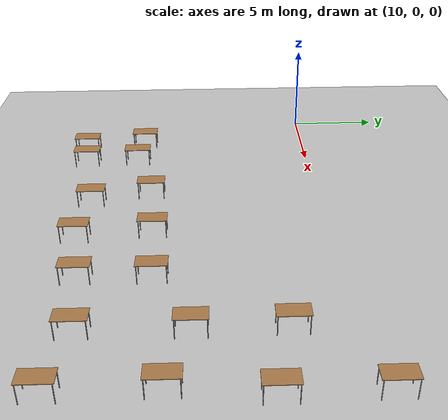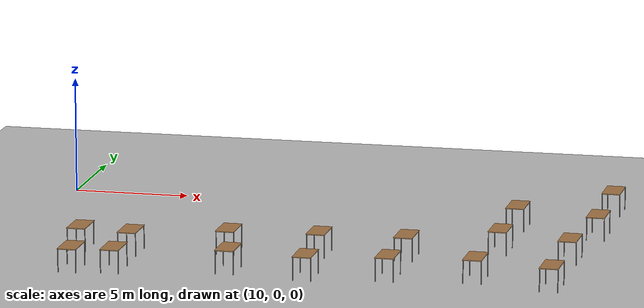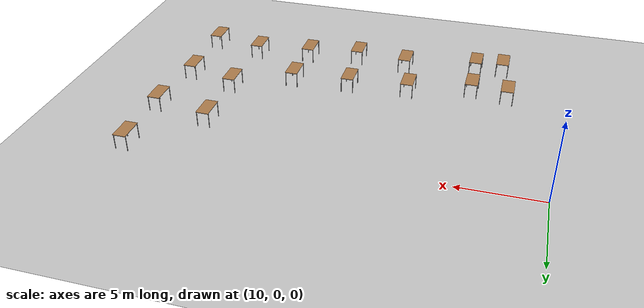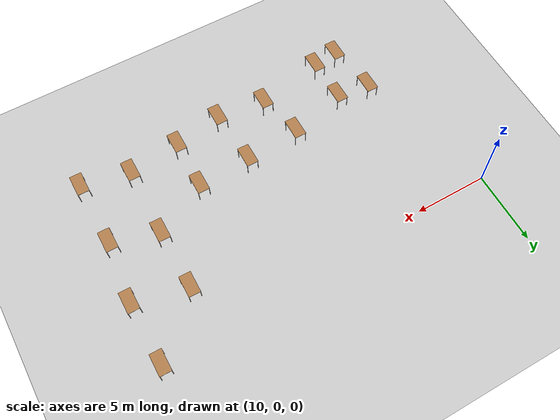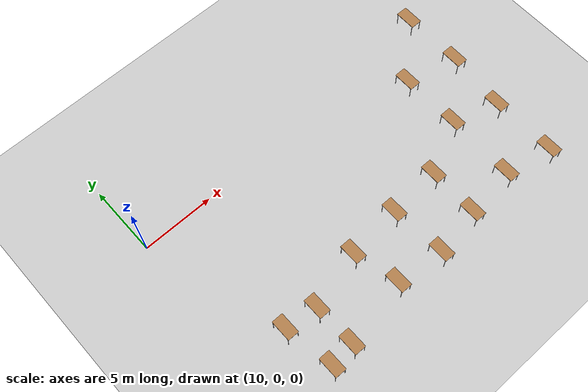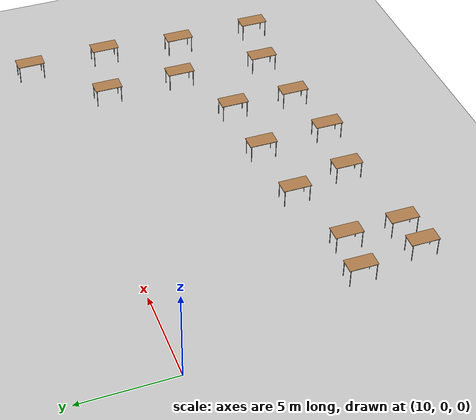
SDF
<sdf version="1.6">
 <world name="default">
  <model name="ground_plane">
   <static>1</static>
   <link name="link">
    <collision name="collision">
     <geometry><plane><normal>0 0 1</normal><size>100 100</size></plane></geometry>
     <surface>
      <contact><collide_bitmask>65535</collide_bitmask></contact>
      <friction><ode><mu>100</mu><mu2>50</mu2></ode></friction>
     </surface>
    </collision>
    <visual name="visual">
     <cast_shadows>0</cast_shadows>
     <geometry><plane><normal>0 0 1</normal><size>100 100</size></plane></geometry>
     <material>
      <script><uri>file://media/materials/scripts/gazebo.material</uri><name>Gazebo/Grey</name></script>
     </material>
    </visual>
   </link>
  </model>
  <model name="table_clone_1">
   <static>1</static>
   <link name="link">
    <collision name="surface">
     <pose>0 0 1 0 -0 0</pose>
     <geometry><box><size>1.5 0.8 0.03</size></box></geometry>
     <surface><friction><ode><mu>0.6</mu><mu2>0.6</mu2></ode></friction></surface>
    </collision>
    <visual name="visual1">
     <pose>0 0 1 0 -0 0</pose>
     <geometry><box><size>1.5 0.8 0.03</size></box></geometry>
     <material>
      <script><uri>file://media/materials/scripts/gazebo.material</uri><name>Gazebo/Wood</name></script>
     </material>
    </visual>
    <collision name="front_left_leg">
     <pose>0.68 0.38 0.5 0 -0 0</pose>
     <geometry><cylinder><radius>0.02</radius><length>1</length></cylinder></geometry>
    </collision>
    <visual name="front_left_leg">
     <pose>0.68 0.38 0.5 0 -0 0</pose>
     <geometry><cylinder><radius>0.02</radius><length>1</length></cylinder></geometry>
     <material>
      <script><uri>file://media/materials/scripts/gazebo.material</uri><name>Gazebo/Grey</name></script>
     </material>
    </visual>
    <collision name="front_right_leg">
     <pose>0.68 -0.38 0.5 0 -0 0</pose>
     <geometry><cylinder><radius>0.02</radius><length>1</length></cylinder></geometry>
    </collision>
    <visual name="front_right_leg">
     <pose>0.68 -0.38 0.5 0 -0 0</pose>
     <geometry><cylinder><radius>0.02</radius><length>1</length></cylinder></geometry>
     <material>
      <script><uri>file://media/materials/scripts/gazebo.material</uri><name>Gazebo/Grey</name></script>
     </material>
    </visual>
    <collision name="back_right_leg">
     <pose>-0.68 -0.38 0.5 0 -0 0</pose>
     <geometry><cylinder><radius>0.02</radius><length>1</length></cylinder></geometry>
    </collision>
    <visual name="back_right_leg">
     <pose>-0.68 -0.38 0.5 0 -0 0</pose>
     <geometry><cylinder><radius>0.02</radius><length>1</length></cylinder></geometry>
     <material>
      <script><uri>file://media/materials/scripts/gazebo.material</uri><name>Gazebo/Grey</name></script>
     </material>
    </visual>
    <collision name="back_left_leg">
     <pose>-0.68 0.38 0.5 0 -0 0</pose>
     <geometry><cylinder><radius>0.02</radius><length>1</length></cylinder></geometry>
    </collision>
    <visual name="back_left_leg">
     <pose>-0.68 0.38 0.5 0 -0 0</pose>
     <geometry><cylinder><radius>0.02</radius><length>1</length></cylinder></geometry>
     <material>
      <script><uri>file://media/materials/scripts/gazebo.material</uri><name>Gazebo/Grey</name></script>
     </material>
    </visual>
   </link>
   <pose>12.8871 -9.82897 0 0 0 -1.57678</pose>
  </model>
  <model name="table_clone_4">
   <static>1</static>
   <link name="link">
    <collision name="surface">
     <pose>0 0 1 0 -0 0</pose>
     <geometry><box><size>1.5 0.8 0.03</size></box></geometry>
     <surface><friction><ode><mu>0.6</mu><mu2>0.6</mu2></ode></friction></surface>
    </collision>
    <visual name="visual1">
     <pose>0 0 1 0 -0 0</pose>
     <geometry><box><size>1.5 0.8 0.03</size></box></geometry>
     <material>
      <script><uri>file://media/materials/scripts/gazebo.material</uri><name>Gazebo/Wood</name></script>
     </material>
    </visual>
    <collision name="front_left_leg">
     <pose>0.68 0.38 0.5 0 -0 0</pose>
     <geometry><cylinder><radius>0.02</radius><length>1</length></cylinder></geometry>
    </collision>
    <visual name="front_left_leg">
     <pose>0.68 0.38 0.5 0 -0 0</pose>
     <geometry><cylinder><radius>0.02</radius><length>1</length></cylinder></geometry>
     <material>
      <script><uri>file://media/materials/scripts/gazebo.material</uri><name>Gazebo/Grey</name></script>
     </material>
    </visual>
    <collision name="front_right_leg">
     <pose>0.68 -0.38 0.5 0 -0 0</pose>
     <geometry><cylinder><radius>0.02</radius><length>1</length></cylinder></geometry>
    </collision>
    <visual name="front_right_leg">
     <pose>0.68 -0.38 0.5 0 -0 0</pose>
     <geometry><cylinder><radius>0.02</radius><length>1</length></cylinder></geometry>
     <material>
      <script><uri>file://media/materials/scripts/gazebo.material</uri><name>Gazebo/Grey</name></script>
     </material>
    </visual>
    <collision name="back_right_leg">
     <pose>-0.68 -0.38 0.5 0 -0 0</pose>
     <geometry><cylinder><radius>0.02</radius><length>1</length></cylinder></geometry>
    </collision>
    <visual name="back_right_leg">
     <pose>-0.68 -0.38 0.5 0 -0 0</pose>
     <geometry><cylinder><radius>0.02</radius><length>1</length></cylinder></geometry>
     <material>
      <script><uri>file://media/materials/scripts/gazebo.material</uri><name>Gazebo/Grey</name></script>
     </material>
    </visual>
    <collision name="back_left_leg">
     <pose>-0.68 0.38 0.5 0 -0 0</pose>
     <geometry><cylinder><radius>0.02</radius><length>1</length></cylinder></geometry>
    </collision>
    <visual name="back_left_leg">
     <pose>-0.68 0.38 0.5 0 -0 0</pose>
     <geometry><cylinder><radius>0.02</radius><length>1</length></cylinder></geometry>
     <material>
      <script><uri>file://media/materials/scripts/gazebo.material</uri><name>Gazebo/Grey</name></script>
     </material>
    </visual>
   </link>
   <pose>13.4499 -13.3204 0 0 0 -1.57678</pose>
  </model>
  <model name="table_clone_6">
   <static>1</static>
   <link name="link">
    <collision name="surface">
     <pose>0 0 1 0 -0 0</pose>
     <geometry><box><size>1.5 0.8 0.03</size></box></geometry>
     <surface><friction><ode><mu>0.6</mu><mu2>0.6</mu2></ode></friction></surface>
    </collision>
    <visual name="visual1">
     <pose>0 0 1 0 -0 0</pose>
     <geometry><box><size>1.5 0.8 0.03</size></box></geometry>
     <material>
      <script><uri>file://media/materials/scripts/gazebo.material</uri><name>Gazebo/Wood</name></script>
     </material>
    </visual>
    <collision name="front_left_leg">
     <pose>0.68 0.38 0.5 0 -0 0</pose>
     <geometry><cylinder><radius>0.02</radius><length>1</length></cylinder></geometry>
    </collision>
    <visual name="front_left_leg">
     <pose>0.68 0.38 0.5 0 -0 0</pose>
     <geometry><cylinder><radius>0.02</radius><length>1</length></cylinder></geometry>
     <material>
      <script><uri>file://media/materials/scripts/gazebo.material</uri><name>Gazebo/Grey</name></script>
     </material>
    </visual>
    <collision name="front_right_leg">
     <pose>0.68 -0.38 0.5 0 -0 0</pose>
     <geometry><cylinder><radius>0.02</radius><length>1</length></cylinder></geometry>
    </collision>
    <visual name="front_right_leg">
     <pose>0.68 -0.38 0.5 0 -0 0</pose>
     <geometry><cylinder><radius>0.02</radius><length>1</length></cylinder></geometry>
     <material>
      <script><uri>file://media/materials/scripts/gazebo.material</uri><name>Gazebo/Grey</name></script>
     </material>
    </visual>
    <collision name="back_right_leg">
     <pose>-0.68 -0.38 0.5 0 -0 0</pose>
     <geometry><cylinder><radius>0.02</radius><length>1</length></cylinder></geometry>
    </collision>
    <visual name="back_right_leg">
     <pose>-0.68 -0.38 0.5 0 -0 0</pose>
     <geometry><cylinder><radius>0.02</radius><length>1</length></cylinder></geometry>
     <material>
      <script><uri>file://media/materials/scripts/gazebo.material</uri><name>Gazebo/Grey</name></script>
     </material>
    </visual>
    <collision name="back_left_leg">
     <pose>-0.68 0.38 0.5 0 -0 0</pose>
     <geometry><cylinder><radius>0.02</radius><length>1</length></cylinder></geometry>
    </collision>
    <visual name="back_left_leg">
     <pose>-0.68 0.38 0.5 0 -0 0</pose>
     <geometry><cylinder><radius>0.02</radius><length>1</length></cylinder></geometry>
     <material>
      <script><uri>file://media/materials/scripts/gazebo.material</uri><name>Gazebo/Grey</name></script>
     </material>
    </visual>
   </link>
   <pose>15.1994 -13.1014 0 0 0 -1.57678</pose>
  </model>
  <model name="table_clone_7">
   <static>1</static>
   <link name="link">
    <collision name="surface">
     <pose>0 0 1 0 -0 0</pose>
     <geometry><box><size>1.5 0.8 0.03</size></box></geometry>
     <surface><friction><ode><mu>0.6</mu><mu2>0.6</mu2></ode></friction></surface>
    </collision>
    <visual name="visual1">
     <pose>0 0 1 0 -0 0</pose>
     <geometry><box><size>1.5 0.8 0.03</size></box></geometry>
     <material>
      <script><uri>file://media/materials/scripts/gazebo.material</uri><name>Gazebo/Wood</name></script>
     </material>
    </visual>
    <collision name="front_left_leg">
     <pose>0.68 0.38 0.5 0 -0 0</pose>
     <geometry><cylinder><radius>0.02</radius><length>1</length></cylinder></geometry>
    </collision>
    <visual name="front_left_leg">
     <pose>0.68 0.38 0.5 0 -0 0</pose>
     <geometry><cylinder><radius>0.02</radius><length>1</length></cylinder></geometry>
     <material>
      <script><uri>file://media/materials/scripts/gazebo.material</uri><name>Gazebo/Grey</name></script>
     </material>
    </visual>
    <collision name="front_right_leg">
     <pose>0.68 -0.38 0.5 0 -0 0</pose>
     <geometry><cylinder><radius>0.02</radius><length>1</length></cylinder></geometry>
    </collision>
    <visual name="front_right_leg">
     <pose>0.68 -0.38 0.5 0 -0 0</pose>
     <geometry><cylinder><radius>0.02</radius><length>1</length></cylinder></geometry>
     <material>
      <script><uri>file://media/materials/scripts/gazebo.material</uri><name>Gazebo/Grey</name></script>
     </material>
    </visual>
    <collision name="back_right_leg">
     <pose>-0.68 -0.38 0.5 0 -0 0</pose>
     <geometry><cylinder><radius>0.02</radius><length>1</length></cylinder></geometry>
    </collision>
    <visual name="back_right_leg">
     <pose>-0.68 -0.38 0.5 0 -0 0</pose>
     <geometry><cylinder><radius>0.02</radius><length>1</length></cylinder></geometry>
     <material>
      <script><uri>file://media/materials/scripts/gazebo.material</uri><name>Gazebo/Grey</name></script>
     </material>
    </visual>
    <collision name="back_left_leg">
     <pose>-0.68 0.38 0.5 0 -0 0</pose>
     <geometry><cylinder><radius>0.02</radius><length>1</length></cylinder></geometry>
    </collision>
    <visual name="back_left_leg">
     <pose>-0.68 0.38 0.5 0 -0 0</pose>
     <geometry><cylinder><radius>0.02</radius><length>1</length></cylinder></geometry>
     <material>
      <script><uri>file://media/materials/scripts/gazebo.material</uri><name>Gazebo/Grey</name></script>
     </material>
    </visual>
   </link>
   <pose>15.1439 -10.1159 0 0 0 -1.57678</pose>
  </model>
  <model name="table_clone_7_clone_3">
   <static>1</static>
   <link name="link">
    <collision name="surface">
     <pose>0 0 1 0 -0 0</pose>
     <geometry><box><size>1.5 0.8 0.03</size></box></geometry>
     <surface><friction><ode><mu>0.6</mu><mu2>0.6</mu2></ode></friction></surface>
    </collision>
    <visual name="visual1">
     <pose>0 0 1 0 -0 0</pose>
     <geometry><box><size>1.5 0.8 0.03</size></box></geometry>
     <material>
      <script><uri>file://media/materials/scripts/gazebo.material</uri><name>Gazebo/Wood</name></script>
     </material>
    </visual>
    <collision name="front_left_leg">
     <pose>0.68 0.38 0.5 0 -0 0</pose>
     <geometry><cylinder><radius>0.02</radius><length>1</length></cylinder></geometry>
    </collision>
    <visual name="front_left_leg">
     <pose>0.68 0.38 0.5 0 -0 0</pose>
     <geometry><cylinder><radius>0.02</radius><length>1</length></cylinder></geometry>
     <material>
      <script><uri>file://media/materials/scripts/gazebo.material</uri><name>Gazebo/Grey</name></script>
     </material>
    </visual>
    <collision name="front_right_leg">
     <pose>0.68 -0.38 0.5 0 -0 0</pose>
     <geometry><cylinder><radius>0.02</radius><length>1</length></cylinder></geometry>
    </collision>
    <visual name="front_right_leg">
     <pose>0.68 -0.38 0.5 0 -0 0</pose>
     <geometry><cylinder><radius>0.02</radius><length>1</length></cylinder></geometry>
     <material>
      <script><uri>file://media/materials/scripts/gazebo.material</uri><name>Gazebo/Grey</name></script>
     </material>
    </visual>
    <collision name="back_right_leg">
     <pose>-0.68 -0.38 0.5 0 -0 0</pose>
     <geometry><cylinder><radius>0.02</radius><length>1</length></cylinder></geometry>
    </collision>
    <visual name="back_right_leg">
     <pose>-0.68 -0.38 0.5 0 -0 0</pose>
     <geometry><cylinder><radius>0.02</radius><length>1</length></cylinder></geometry>
     <material>
      <script><uri>file://media/materials/scripts/gazebo.material</uri><name>Gazebo/Grey</name></script>
     </material>
    </visual>
    <collision name="back_left_leg">
     <pose>-0.68 0.38 0.5 0 -0 0</pose>
     <geometry><cylinder><radius>0.02</radius><length>1</length></cylinder></geometry>
    </collision>
    <visual name="back_left_leg">
     <pose>-0.68 0.38 0.5 0 -0 0</pose>
     <geometry><cylinder><radius>0.02</radius><length>1</length></cylinder></geometry>
     <material>
      <script><uri>file://media/materials/scripts/gazebo.material</uri><name>Gazebo/Grey</name></script>
     </material>
    </visual>
   </link>
   <pose>33.7056 0.969584 0 0 0 -1.57678</pose>
  </model>
  <model name="table_clone_7_clone_4">
   <static>1</static>
   <link name="link">
    <collision name="surface">
     <pose>0 0 1 0 -0 0</pose>
     <geometry><box><size>1.5 0.8 0.03</size></box></geometry>
     <surface><friction><ode><mu>0.6</mu><mu2>0.6</mu2></ode></friction></surface>
    </collision>
    <visual name="visual1">
     <pose>0 0 1 0 -0 0</pose>
     <geometry><box><size>1.5 0.8 0.03</size></box></geometry>
     <material>
      <script><uri>file://media/materials/scripts/gazebo.material</uri><name>Gazebo/Wood</name></script>
     </material>
    </visual>
    <collision name="front_left_leg">
     <pose>0.68 0.38 0.5 0 -0 0</pose>
     <geometry><cylinder><radius>0.02</radius><length>1</length></cylinder></geometry>
    </collision>
    <visual name="front_left_leg">
     <pose>0.68 0.38 0.5 0 -0 0</pose>
     <geometry><cylinder><radius>0.02</radius><length>1</length></cylinder></geometry>
     <material>
      <script><uri>file://media/materials/scripts/gazebo.material</uri><name>Gazebo/Grey</name></script>
     </material>
    </visual>
    <collision name="front_right_leg">
     <pose>0.68 -0.38 0.5 0 -0 0</pose>
     <geometry><cylinder><radius>0.02</radius><length>1</length></cylinder></geometry>
    </collision>
    <visual name="front_right_leg">
     <pose>0.68 -0.38 0.5 0 -0 0</pose>
     <geometry><cylinder><radius>0.02</radius><length>1</length></cylinder></geometry>
     <material>
      <script><uri>file://media/materials/scripts/gazebo.material</uri><name>Gazebo/Grey</name></script>
     </material>
    </visual>
    <collision name="back_right_leg">
     <pose>-0.68 -0.38 0.5 0 -0 0</pose>
     <geometry><cylinder><radius>0.02</radius><length>1</length></cylinder></geometry>
    </collision>
    <visual name="back_right_leg">
     <pose>-0.68 -0.38 0.5 0 -0 0</pose>
     <geometry><cylinder><radius>0.02</radius><length>1</length></cylinder></geometry>
     <material>
      <script><uri>file://media/materials/scripts/gazebo.material</uri><name>Gazebo/Grey</name></script>
     </material>
    </visual>
    <collision name="back_left_leg">
     <pose>-0.68 0.38 0.5 0 -0 0</pose>
     <geometry><cylinder><radius>0.02</radius><length>1</length></cylinder></geometry>
    </collision>
    <visual name="back_left_leg">
     <pose>-0.68 0.38 0.5 0 -0 0</pose>
     <geometry><cylinder><radius>0.02</radius><length>1</length></cylinder></geometry>
     <material>
      <script><uri>file://media/materials/scripts/gazebo.material</uri><name>Gazebo/Grey</name></script>
     </material>
    </visual>
   </link>
   <pose>33.7699 -3.36268 0 0 0 -1.57678</pose>
  </model>
  <model name="table_clone_7_clone_5">
   <static>1</static>
   <link name="link">
    <collision name="surface">
     <pose>0 0 1 0 -0 0</pose>
     <geometry><box><size>1.5 0.8 0.03</size></box></geometry>
     <surface><friction><ode><mu>0.6</mu><mu2>0.6</mu2></ode></friction></surface>
    </collision>
    <visual name="visual1">
     <pose>0 0 1 0 -0 0</pose>
     <geometry><box><size>1.5 0.8 0.03</size></box></geometry>
     <material>
      <script><uri>file://media/materials/scripts/gazebo.material</uri><name>Gazebo/Wood</name></script>
     </material>
    </visual>
    <collision name="front_left_leg">
     <pose>0.68 0.38 0.5 0 -0 0</pose>
     <geometry><cylinder><radius>0.02</radius><length>1</length></cylinder></geometry>
    </collision>
    <visual name="front_left_leg">
     <pose>0.68 0.38 0.5 0 -0 0</pose>
     <geometry><cylinder><radius>0.02</radius><length>1</length></cylinder></geometry>
     <material>
      <script><uri>file://media/materials/scripts/gazebo.material</uri><name>Gazebo/Grey</name></script>
     </material>
    </visual>
    <collision name="front_right_leg">
     <pose>0.68 -0.38 0.5 0 -0 0</pose>
     <geometry><cylinder><radius>0.02</radius><length>1</length></cylinder></geometry>
    </collision>
    <visual name="front_right_leg">
     <pose>0.68 -0.38 0.5 0 -0 0</pose>
     <geometry><cylinder><radius>0.02</radius><length>1</length></cylinder></geometry>
     <material>
      <script><uri>file://media/materials/scripts/gazebo.material</uri><name>Gazebo/Grey</name></script>
     </material>
    </visual>
    <collision name="back_right_leg">
     <pose>-0.68 -0.38 0.5 0 -0 0</pose>
     <geometry><cylinder><radius>0.02</radius><length>1</length></cylinder></geometry>
    </collision>
    <visual name="back_right_leg">
     <pose>-0.68 -0.38 0.5 0 -0 0</pose>
     <geometry><cylinder><radius>0.02</radius><length>1</length></cylinder></geometry>
     <material>
      <script><uri>file://media/materials/scripts/gazebo.material</uri><name>Gazebo/Grey</name></script>
     </material>
    </visual>
    <collision name="back_left_leg">
     <pose>-0.68 0.38 0.5 0 -0 0</pose>
     <geometry><cylinder><radius>0.02</radius><length>1</length></cylinder></geometry>
    </collision>
    <visual name="back_left_leg">
     <pose>-0.68 0.38 0.5 0 -0 0</pose>
     <geometry><cylinder><radius>0.02</radius><length>1</length></cylinder></geometry>
     <material>
      <script><uri>file://media/materials/scripts/gazebo.material</uri><name>Gazebo/Grey</name></script>
     </material>
    </visual>
   </link>
   <pose>33.3213 -7.66936 0 0 0 -1.57678</pose>
  </model>
  <model name="table_clone_7_clone_6">
   <static>1</static>
   <link name="link">
    <collision name="surface">
     <pose>0 0 1 0 -0 0</pose>
     <geometry><box><size>1.5 0.8 0.03</size></box></geometry>
     <surface><friction><ode><mu>0.6</mu><mu2>0.6</mu2></ode></friction></surface>
    </collision>
    <visual name="visual1">
     <pose>0 0 1 0 -0 0</pose>
     <geometry><box><size>1.5 0.8 0.03</size></box></geometry>
     <material>
      <script><uri>file://media/materials/scripts/gazebo.material</uri><name>Gazebo/Wood</name></script>
     </material>
    </visual>
    <collision name="front_left_leg">
     <pose>0.68 0.38 0.5 0 -0 0</pose>
     <geometry><cylinder><radius>0.02</radius><length>1</length></cylinder></geometry>
    </collision>
    <visual name="front_left_leg">
     <pose>0.68 0.38 0.5 0 -0 0</pose>
     <geometry><cylinder><radius>0.02</radius><length>1</length></cylinder></geometry>
     <material>
      <script><uri>file://media/materials/scripts/gazebo.material</uri><name>Gazebo/Grey</name></script>
     </material>
    </visual>
    <collision name="front_right_leg">
     <pose>0.68 -0.38 0.5 0 -0 0</pose>
     <geometry><cylinder><radius>0.02</radius><length>1</length></cylinder></geometry>
    </collision>
    <visual name="front_right_leg">
     <pose>0.68 -0.38 0.5 0 -0 0</pose>
     <geometry><cylinder><radius>0.02</radius><length>1</length></cylinder></geometry>
     <material>
      <script><uri>file://media/materials/scripts/gazebo.material</uri><name>Gazebo/Grey</name></script>
     </material>
    </visual>
    <collision name="back_right_leg">
     <pose>-0.68 -0.38 0.5 0 -0 0</pose>
     <geometry><cylinder><radius>0.02</radius><length>1</length></cylinder></geometry>
    </collision>
    <visual name="back_right_leg">
     <pose>-0.68 -0.38 0.5 0 -0 0</pose>
     <geometry><cylinder><radius>0.02</radius><length>1</length></cylinder></geometry>
     <material>
      <script><uri>file://media/materials/scripts/gazebo.material</uri><name>Gazebo/Grey</name></script>
     </material>
    </visual>
    <collision name="back_left_leg">
     <pose>-0.68 0.38 0.5 0 -0 0</pose>
     <geometry><cylinder><radius>0.02</radius><length>1</length></cylinder></geometry>
    </collision>
    <visual name="back_left_leg">
     <pose>-0.68 0.38 0.5 0 -0 0</pose>
     <geometry><cylinder><radius>0.02</radius><length>1</length></cylinder></geometry>
     <material>
      <script><uri>file://media/materials/scripts/gazebo.material</uri><name>Gazebo/Grey</name></script>
     </material>
    </visual>
   </link>
   <pose>33.3689 -12.2322 0 0 0 -1.57678</pose>
  </model>
  <model name="table_clone_7_clone_12">
   <static>1</static>
   <link name="link">
    <collision name="surface">
     <pose>0 0 1 0 -0 0</pose>
     <geometry><box><size>1.5 0.8 0.03</size></box></geometry>
     <surface><friction><ode><mu>0.6</mu><mu2>0.6</mu2></ode></friction></surface>
    </collision>
    <visual name="visual1">
     <pose>0 0 1 0 -0 0</pose>
     <geometry><box><size>1.5 0.8 0.03</size></box></geometry>
     <material>
      <script><uri>file://media/materials/scripts/gazebo.material</uri><name>Gazebo/Wood</name></script>
     </material>
    </visual>
    <collision name="front_left_leg">
     <pose>0.68 0.38 0.5 0 -0 0</pose>
     <geometry><cylinder><radius>0.02</radius><length>1</length></cylinder></geometry>
    </collision>
    <visual name="front_left_leg">
     <pose>0.68 0.38 0.5 0 -0 0</pose>
     <geometry><cylinder><radius>0.02</radius><length>1</length></cylinder></geometry>
     <material>
      <script><uri>file://media/materials/scripts/gazebo.material</uri><name>Gazebo/Grey</name></script>
     </material>
    </visual>
    <collision name="front_right_leg">
     <pose>0.68 -0.38 0.5 0 -0 0</pose>
     <geometry><cylinder><radius>0.02</radius><length>1</length></cylinder></geometry>
    </collision>
    <visual name="front_right_leg">
     <pose>0.68 -0.38 0.5 0 -0 0</pose>
     <geometry><cylinder><radius>0.02</radius><length>1</length></cylinder></geometry>
     <material>
      <script><uri>file://media/materials/scripts/gazebo.material</uri><name>Gazebo/Grey</name></script>
     </material>
    </visual>
    <collision name="back_right_leg">
     <pose>-0.68 -0.38 0.5 0 -0 0</pose>
     <geometry><cylinder><radius>0.02</radius><length>1</length></cylinder></geometry>
    </collision>
    <visual name="back_right_leg">
     <pose>-0.68 -0.38 0.5 0 -0 0</pose>
     <geometry><cylinder><radius>0.02</radius><length>1</length></cylinder></geometry>
     <material>
      <script><uri>file://media/materials/scripts/gazebo.material</uri><name>Gazebo/Grey</name></script>
     </material>
    </visual>
    <collision name="back_left_leg">
     <pose>-0.68 0.38 0.5 0 -0 0</pose>
     <geometry><cylinder><radius>0.02</radius><length>1</length></cylinder></geometry>
    </collision>
    <visual name="back_left_leg">
     <pose>-0.68 0.38 0.5 0 -0 0</pose>
     <geometry><cylinder><radius>0.02</radius><length>1</length></cylinder></geometry>
     <material>
      <script><uri>file://media/materials/scripts/gazebo.material</uri><name>Gazebo/Grey</name></script>
     </material>
    </visual>
   </link>
   <pose>30.1589 -2.50172 0 0 0 -1.57678</pose>
  </model>
  <model name="table_clone_7_clone_13">
   <static>1</static>
   <link name="link">
    <collision name="surface">
     <pose>0 0 1 0 -0 0</pose>
     <geometry><box><size>1.5 0.8 0.03</size></box></geometry>
     <surface><friction><ode><mu>0.6</mu><mu2>0.6</mu2></ode></friction></surface>
    </collision>
    <visual name="visual1">
     <pose>0 0 1 0 -0 0</pose>
     <geometry><box><size>1.5 0.8 0.03</size></box></geometry>
     <material>
      <script><uri>file://media/materials/scripts/gazebo.material</uri><name>Gazebo/Wood</name></script>
     </material>
    </visual>
    <collision name="front_left_leg">
     <pose>0.68 0.38 0.5 0 -0 0</pose>
     <geometry><cylinder><radius>0.02</radius><length>1</length></cylinder></geometry>
    </collision>
    <visual name="front_left_leg">
     <pose>0.68 0.38 0.5 0 -0 0</pose>
     <geometry><cylinder><radius>0.02</radius><length>1</length></cylinder></geometry>
     <material>
      <script><uri>file://media/materials/scripts/gazebo.material</uri><name>Gazebo/Grey</name></script>
     </material>
    </visual>
    <collision name="front_right_leg">
     <pose>0.68 -0.38 0.5 0 -0 0</pose>
     <geometry><cylinder><radius>0.02</radius><length>1</length></cylinder></geometry>
    </collision>
    <visual name="front_right_leg">
     <pose>0.68 -0.38 0.5 0 -0 0</pose>
     <geometry><cylinder><radius>0.02</radius><length>1</length></cylinder></geometry>
     <material>
      <script><uri>file://media/materials/scripts/gazebo.material</uri><name>Gazebo/Grey</name></script>
     </material>
    </visual>
    <collision name="back_right_leg">
     <pose>-0.68 -0.38 0.5 0 -0 0</pose>
     <geometry><cylinder><radius>0.02</radius><length>1</length></cylinder></geometry>
    </collision>
    <visual name="back_right_leg">
     <pose>-0.68 -0.38 0.5 0 -0 0</pose>
     <geometry><cylinder><radius>0.02</radius><length>1</length></cylinder></geometry>
     <material>
      <script><uri>file://media/materials/scripts/gazebo.material</uri><name>Gazebo/Grey</name></script>
     </material>
    </visual>
    <collision name="back_left_leg">
     <pose>-0.68 0.38 0.5 0 -0 0</pose>
     <geometry><cylinder><radius>0.02</radius><length>1</length></cylinder></geometry>
    </collision>
    <visual name="back_left_leg">
     <pose>-0.68 0.38 0.5 0 -0 0</pose>
     <geometry><cylinder><radius>0.02</radius><length>1</length></cylinder></geometry>
     <material>
      <script><uri>file://media/materials/scripts/gazebo.material</uri><name>Gazebo/Grey</name></script>
     </material>
    </visual>
   </link>
   <pose>30.1977 -6.69196 0 0 0 -1.57678</pose>
  </model>
  <model name="table_clone_7_clone_14">
   <static>1</static>
   <link name="link">
    <collision name="surface">
     <pose>0 0 1 0 -0 0</pose>
     <geometry><box><size>1.5 0.8 0.03</size></box></geometry>
     <surface><friction><ode><mu>0.6</mu><mu2>0.6</mu2></ode></friction></surface>
    </collision>
    <visual name="visual1">
     <pose>0 0 1 0 -0 0</pose>
     <geometry><box><size>1.5 0.8 0.03</size></box></geometry>
     <material>
      <script><uri>file://media/materials/scripts/gazebo.material</uri><name>Gazebo/Wood</name></script>
     </material>
    </visual>
    <collision name="front_left_leg">
     <pose>0.68 0.38 0.5 0 -0 0</pose>
     <geometry><cylinder><radius>0.02</radius><length>1</length></cylinder></geometry>
    </collision>
    <visual name="front_left_leg">
     <pose>0.68 0.38 0.5 0 -0 0</pose>
     <geometry><cylinder><radius>0.02</radius><length>1</length></cylinder></geometry>
     <material>
      <script><uri>file://media/materials/scripts/gazebo.material</uri><name>Gazebo/Grey</name></script>
     </material>
    </visual>
    <collision name="front_right_leg">
     <pose>0.68 -0.38 0.5 0 -0 0</pose>
     <geometry><cylinder><radius>0.02</radius><length>1</length></cylinder></geometry>
    </collision>
    <visual name="front_right_leg">
     <pose>0.68 -0.38 0.5 0 -0 0</pose>
     <geometry><cylinder><radius>0.02</radius><length>1</length></cylinder></geometry>
     <material>
      <script><uri>file://media/materials/scripts/gazebo.material</uri><name>Gazebo/Grey</name></script>
     </material>
    </visual>
    <collision name="back_right_leg">
     <pose>-0.68 -0.38 0.5 0 -0 0</pose>
     <geometry><cylinder><radius>0.02</radius><length>1</length></cylinder></geometry>
    </collision>
    <visual name="back_right_leg">
     <pose>-0.68 -0.38 0.5 0 -0 0</pose>
     <geometry><cylinder><radius>0.02</radius><length>1</length></cylinder></geometry>
     <material>
      <script><uri>file://media/materials/scripts/gazebo.material</uri><name>Gazebo/Grey</name></script>
     </material>
    </visual>
    <collision name="back_left_leg">
     <pose>-0.68 0.38 0.5 0 -0 0</pose>
     <geometry><cylinder><radius>0.02</radius><length>1</length></cylinder></geometry>
    </collision>
    <visual name="back_left_leg">
     <pose>-0.68 0.38 0.5 0 -0 0</pose>
     <geometry><cylinder><radius>0.02</radius><length>1</length></cylinder></geometry>
     <material>
      <script><uri>file://media/materials/scripts/gazebo.material</uri><name>Gazebo/Grey</name></script>
     </material>
    </visual>
   </link>
   <pose>30.0784 -11.5635 0 0 0 -1.57678</pose>
  </model>
  <model name="table_clone_7_clone_15">
   <static>1</static>
   <link name="link">
    <collision name="surface">
     <pose>0 0 1 0 -0 0</pose>
     <geometry><box><size>1.5 0.8 0.03</size></box></geometry>
     <surface><friction><ode><mu>0.6</mu><mu2>0.6</mu2></ode></friction></surface>
    </collision>
    <visual name="visual1">
     <pose>0 0 1 0 -0 0</pose>
     <geometry><box><size>1.5 0.8 0.03</size></box></geometry>
     <material>
      <script><uri>file://media/materials/scripts/gazebo.material</uri><name>Gazebo/Wood</name></script>
     </material>
    </visual>
    <collision name="front_left_leg">
     <pose>0.68 0.38 0.5 0 -0 0</pose>
     <geometry><cylinder><radius>0.02</radius><length>1</length></cylinder></geometry>
    </collision>
    <visual name="front_left_leg">
     <pose>0.68 0.38 0.5 0 -0 0</pose>
     <geometry><cylinder><radius>0.02</radius><length>1</length></cylinder></geometry>
     <material>
      <script><uri>file://media/materials/scripts/gazebo.material</uri><name>Gazebo/Grey</name></script>
     </material>
    </visual>
    <collision name="front_right_leg">
     <pose>0.68 -0.38 0.5 0 -0 0</pose>
     <geometry><cylinder><radius>0.02</radius><length>1</length></cylinder></geometry>
    </collision>
    <visual name="front_right_leg">
     <pose>0.68 -0.38 0.5 0 -0 0</pose>
     <geometry><cylinder><radius>0.02</radius><length>1</length></cylinder></geometry>
     <material>
      <script><uri>file://media/materials/scripts/gazebo.material</uri><name>Gazebo/Grey</name></script>
     </material>
    </visual>
    <collision name="back_right_leg">
     <pose>-0.68 -0.38 0.5 0 -0 0</pose>
     <geometry><cylinder><radius>0.02</radius><length>1</length></cylinder></geometry>
    </collision>
    <visual name="back_right_leg">
     <pose>-0.68 -0.38 0.5 0 -0 0</pose>
     <geometry><cylinder><radius>0.02</radius><length>1</length></cylinder></geometry>
     <material>
      <script><uri>file://media/materials/scripts/gazebo.material</uri><name>Gazebo/Grey</name></script>
     </material>
    </visual>
    <collision name="back_left_leg">
     <pose>-0.68 0.38 0.5 0 -0 0</pose>
     <geometry><cylinder><radius>0.02</radius><length>1</length></cylinder></geometry>
    </collision>
    <visual name="back_left_leg">
     <pose>-0.68 0.38 0.5 0 -0 0</pose>
     <geometry><cylinder><radius>0.02</radius><length>1</length></cylinder></geometry>
     <material>
      <script><uri>file://media/materials/scripts/gazebo.material</uri><name>Gazebo/Grey</name></script>
     </material>
    </visual>
   </link>
   <pose>26.5149 -12 0 0 0 -1.57678</pose>
  </model>
  <model name="table_clone_7_clone_16">
   <static>1</static>
   <link name="link">
    <collision name="surface">
     <pose>0 0 1 0 -0 0</pose>
     <geometry><box><size>1.5 0.8 0.03</size></box></geometry>
     <surface><friction><ode><mu>0.6</mu><mu2>0.6</mu2></ode></friction></surface>
    </collision>
    <visual name="visual1">
     <pose>0 0 1 0 -0 0</pose>
     <geometry><box><size>1.5 0.8 0.03</size></box></geometry>
     <material>
      <script><uri>file://media/materials/scripts/gazebo.material</uri><name>Gazebo/Wood</name></script>
     </material>
    </visual>
    <collision name="front_left_leg">
     <pose>0.68 0.38 0.5 0 -0 0</pose>
     <geometry><cylinder><radius>0.02</radius><length>1</length></cylinder></geometry>
    </collision>
    <visual name="front_left_leg">
     <pose>0.68 0.38 0.5 0 -0 0</pose>
     <geometry><cylinder><radius>0.02</radius><length>1</length></cylinder></geometry>
     <material>
      <script><uri>file://media/materials/scripts/gazebo.material</uri><name>Gazebo/Grey</name></script>
     </material>
    </visual>
    <collision name="front_right_leg">
     <pose>0.68 -0.38 0.5 0 -0 0</pose>
     <geometry><cylinder><radius>0.02</radius><length>1</length></cylinder></geometry>
    </collision>
    <visual name="front_right_leg">
     <pose>0.68 -0.38 0.5 0 -0 0</pose>
     <geometry><cylinder><radius>0.02</radius><length>1</length></cylinder></geometry>
     <material>
      <script><uri>file://media/materials/scripts/gazebo.material</uri><name>Gazebo/Grey</name></script>
     </material>
    </visual>
    <collision name="back_right_leg">
     <pose>-0.68 -0.38 0.5 0 -0 0</pose>
     <geometry><cylinder><radius>0.02</radius><length>1</length></cylinder></geometry>
    </collision>
    <visual name="back_right_leg">
     <pose>-0.68 -0.38 0.5 0 -0 0</pose>
     <geometry><cylinder><radius>0.02</radius><length>1</length></cylinder></geometry>
     <material>
      <script><uri>file://media/materials/scripts/gazebo.material</uri><name>Gazebo/Grey</name></script>
     </material>
    </visual>
    <collision name="back_left_leg">
     <pose>-0.68 0.38 0.5 0 -0 0</pose>
     <geometry><cylinder><radius>0.02</radius><length>1</length></cylinder></geometry>
    </collision>
    <visual name="back_left_leg">
     <pose>-0.68 0.38 0.5 0 -0 0</pose>
     <geometry><cylinder><radius>0.02</radius><length>1</length></cylinder></geometry>
     <material>
      <script><uri>file://media/materials/scripts/gazebo.material</uri><name>Gazebo/Grey</name></script>
     </material>
    </visual>
   </link>
   <pose>23.1832 -12.5772 0 0 0 -1.57678</pose>
  </model>
  <model name="table_clone_7_clone_17">
   <static>1</static>
   <link name="link">
    <collision name="surface">
     <pose>0 0 1 0 -0 0</pose>
     <geometry><box><size>1.5 0.8 0.03</size></box></geometry>
     <surface><friction><ode><mu>0.6</mu><mu2>0.6</mu2></ode></friction></surface>
    </collision>
    <visual name="visual1">
     <pose>0 0 1 0 -0 0</pose>
     <geometry><box><size>1.5 0.8 0.03</size></box></geometry>
     <material>
      <script><uri>file://media/materials/scripts/gazebo.material</uri><name>Gazebo/Wood</name></script>
     </material>
    </visual>
    <collision name="front_left_leg">
     <pose>0.68 0.38 0.5 0 -0 0</pose>
     <geometry><cylinder><radius>0.02</radius><length>1</length></cylinder></geometry>
    </collision>
    <visual name="front_left_leg">
     <pose>0.68 0.38 0.5 0 -0 0</pose>
     <geometry><cylinder><radius>0.02</radius><length>1</length></cylinder></geometry>
     <material>
      <script><uri>file://media/materials/scripts/gazebo.material</uri><name>Gazebo/Grey</name></script>
     </material>
    </visual>
    <collision name="front_right_leg">
     <pose>0.68 -0.38 0.5 0 -0 0</pose>
     <geometry><cylinder><radius>0.02</radius><length>1</length></cylinder></geometry>
    </collision>
    <visual name="front_right_leg">
     <pose>0.68 -0.38 0.5 0 -0 0</pose>
     <geometry><cylinder><radius>0.02</radius><length>1</length></cylinder></geometry>
     <material>
      <script><uri>file://media/materials/scripts/gazebo.material</uri><name>Gazebo/Grey</name></script>
     </material>
    </visual>
    <collision name="back_right_leg">
     <pose>-0.68 -0.38 0.5 0 -0 0</pose>
     <geometry><cylinder><radius>0.02</radius><length>1</length></cylinder></geometry>
    </collision>
    <visual name="back_right_leg">
     <pose>-0.68 -0.38 0.5 0 -0 0</pose>
     <geometry><cylinder><radius>0.02</radius><length>1</length></cylinder></geometry>
     <material>
      <script><uri>file://media/materials/scripts/gazebo.material</uri><name>Gazebo/Grey</name></script>
     </material>
    </visual>
    <collision name="back_left_leg">
     <pose>-0.68 0.38 0.5 0 -0 0</pose>
     <geometry><cylinder><radius>0.02</radius><length>1</length></cylinder></geometry>
    </collision>
    <visual name="back_left_leg">
     <pose>-0.68 0.38 0.5 0 -0 0</pose>
     <geometry><cylinder><radius>0.02</radius><length>1</length></cylinder></geometry>
     <material>
      <script><uri>file://media/materials/scripts/gazebo.material</uri><name>Gazebo/Grey</name></script>
     </material>
    </visual>
   </link>
   <pose>19.8416 -12.2122 0 0 0 -1.57678</pose>
  </model>
  <model name="table_clone_7_clone_22">
   <static>1</static>
   <link name="link">
    <collision name="surface">
     <pose>0 0 1 0 -0 0</pose>
     <geometry><box><size>1.5 0.8 0.03</size></box></geometry>
     <surface><friction><ode><mu>0.6</mu><mu2>0.6</mu2></ode></friction></surface>
    </collision>
    <visual name="visual1">
     <pose>0 0 1 0 -0 0</pose>
     <geometry><box><size>1.5 0.8 0.03</size></box></geometry>
     <material>
      <script><uri>file://media/materials/scripts/gazebo.material</uri><name>Gazebo/Wood</name></script>
     </material>
    </visual>
    <collision name="front_left_leg">
     <pose>0.68 0.38 0.5 0 -0 0</pose>
     <geometry><cylinder><radius>0.02</radius><length>1</length></cylinder></geometry>
    </collision>
    <visual name="front_left_leg">
     <pose>0.68 0.38 0.5 0 -0 0</pose>
     <geometry><cylinder><radius>0.02</radius><length>1</length></cylinder></geometry>
     <material>
      <script><uri>file://media/materials/scripts/gazebo.material</uri><name>Gazebo/Grey</name></script>
     </material>
    </visual>
    <collision name="front_right_leg">
     <pose>0.68 -0.38 0.5 0 -0 0</pose>
     <geometry><cylinder><radius>0.02</radius><length>1</length></cylinder></geometry>
    </collision>
    <visual name="front_right_leg">
     <pose>0.68 -0.38 0.5 0 -0 0</pose>
     <geometry><cylinder><radius>0.02</radius><length>1</length></cylinder></geometry>
     <material>
      <script><uri>file://media/materials/scripts/gazebo.material</uri><name>Gazebo/Grey</name></script>
     </material>
    </visual>
    <collision name="back_right_leg">
     <pose>-0.68 -0.38 0.5 0 -0 0</pose>
     <geometry><cylinder><radius>0.02</radius><length>1</length></cylinder></geometry>
    </collision>
    <visual name="back_right_leg">
     <pose>-0.68 -0.38 0.5 0 -0 0</pose>
     <geometry><cylinder><radius>0.02</radius><length>1</length></cylinder></geometry>
     <material>
      <script><uri>file://media/materials/scripts/gazebo.material</uri><name>Gazebo/Grey</name></script>
     </material>
    </visual>
    <collision name="back_left_leg">
     <pose>-0.68 0.38 0.5 0 -0 0</pose>
     <geometry><cylinder><radius>0.02</radius><length>1</length></cylinder></geometry>
    </collision>
    <visual name="back_left_leg">
     <pose>-0.68 0.38 0.5 0 -0 0</pose>
     <geometry><cylinder><radius>0.02</radius><length>1</length></cylinder></geometry>
     <material>
      <script><uri>file://media/materials/scripts/gazebo.material</uri><name>Gazebo/Grey</name></script>
     </material>
    </visual>
   </link>
   <pose>19.0895 -9.04942 0 0 0 -1.57678</pose>
  </model>
  <model name="table_clone_7_clone_23">
   <static>1</static>
   <link name="link">
    <collision name="surface">
     <pose>0 0 1 0 -0 0</pose>
     <geometry><box><size>1.5 0.8 0.03</size></box></geometry>
     <surface><friction><ode><mu>0.6</mu><mu2>0.6</mu2></ode></friction></surface>
    </collision>
    <visual name="visual1">
     <pose>0 0 1 0 -0 0</pose>
     <geometry><box><size>1.5 0.8 0.03</size></box></geometry>
     <material>
      <script><uri>file://media/materials/scripts/gazebo.material</uri><name>Gazebo/Wood</name></script>
     </material>
    </visual>
    <collision name="front_left_leg">
     <pose>0.68 0.38 0.5 0 -0 0</pose>
     <geometry><cylinder><radius>0.02</radius><length>1</length></cylinder></geometry>
    </collision>
    <visual name="front_left_leg">
     <pose>0.68 0.38 0.5 0 -0 0</pose>
     <geometry><cylinder><radius>0.02</radius><length>1</length></cylinder></geometry>
     <material>
      <script><uri>file://media/materials/scripts/gazebo.material</uri><name>Gazebo/Grey</name></script>
     </material>
    </visual>
    <collision name="front_right_leg">
     <pose>0.68 -0.38 0.5 0 -0 0</pose>
     <geometry><cylinder><radius>0.02</radius><length>1</length></cylinder></geometry>
    </collision>
    <visual name="front_right_leg">
     <pose>0.68 -0.38 0.5 0 -0 0</pose>
     <geometry><cylinder><radius>0.02</radius><length>1</length></cylinder></geometry>
     <material>
      <script><uri>file://media/materials/scripts/gazebo.material</uri><name>Gazebo/Grey</name></script>
     </material>
    </visual>
    <collision name="back_right_leg">
     <pose>-0.68 -0.38 0.5 0 -0 0</pose>
     <geometry><cylinder><radius>0.02</radius><length>1</length></cylinder></geometry>
    </collision>
    <visual name="back_right_leg">
     <pose>-0.68 -0.38 0.5 0 -0 0</pose>
     <geometry><cylinder><radius>0.02</radius><length>1</length></cylinder></geometry>
     <material>
      <script><uri>file://media/materials/scripts/gazebo.material</uri><name>Gazebo/Grey</name></script>
     </material>
    </visual>
    <collision name="back_left_leg">
     <pose>-0.68 0.38 0.5 0 -0 0</pose>
     <geometry><cylinder><radius>0.02</radius><length>1</length></cylinder></geometry>
    </collision>
    <visual name="back_left_leg">
     <pose>-0.68 0.38 0.5 0 -0 0</pose>
     <geometry><cylinder><radius>0.02</radius><length>1</length></cylinder></geometry>
     <material>
      <script><uri>file://media/materials/scripts/gazebo.material</uri><name>Gazebo/Grey</name></script>
     </material>
    </visual>
   </link>
   <pose>22.8901 -8.73148 0 0 0 -1.57678</pose>
  </model>
  <model name="table_clone_7_clone_24">
   <static>1</static>
   <link name="link">
    <collision name="surface">
     <pose>0 0 1 0 -0 0</pose>
     <geometry><box><size>1.5 0.8 0.03</size></box></geometry>
     <surface><friction><ode><mu>0.6</mu><mu2>0.6</mu2></ode></friction></surface>
    </collision>
    <visual name="visual1">
     <pose>0 0 1 0 -0 0</pose>
     <geometry><box><size>1.5 0.8 0.03</size></box></geometry>
     <material>
      <script><uri>file://media/materials/scripts/gazebo.material</uri><name>Gazebo/Wood</name></script>
     </material>
    </visual>
    <collision name="front_left_leg">
     <pose>0.68 0.38 0.5 0 -0 0</pose>
     <geometry><cylinder><radius>0.02</radius><length>1</length></cylinder></geometry>
    </collision>
    <visual name="front_left_leg">
     <pose>0.68 0.38 0.5 0 -0 0</pose>
     <geometry><cylinder><radius>0.02</radius><length>1</length></cylinder></geometry>
     <material>
      <script><uri>file://media/materials/scripts/gazebo.material</uri><name>Gazebo/Grey</name></script>
     </material>
    </visual>
    <collision name="front_right_leg">
     <pose>0.68 -0.38 0.5 0 -0 0</pose>
     <geometry><cylinder><radius>0.02</radius><length>1</length></cylinder></geometry>
    </collision>
    <visual name="front_right_leg">
     <pose>0.68 -0.38 0.5 0 -0 0</pose>
     <geometry><cylinder><radius>0.02</radius><length>1</length></cylinder></geometry>
     <material>
      <script><uri>file://media/materials/scripts/gazebo.material</uri><name>Gazebo/Grey</name></script>
     </material>
    </visual>
    <collision name="back_right_leg">
     <pose>-0.68 -0.38 0.5 0 -0 0</pose>
     <geometry><cylinder><radius>0.02</radius><length>1</length></cylinder></geometry>
    </collision>
    <visual name="back_right_leg">
     <pose>-0.68 -0.38 0.5 0 -0 0</pose>
     <geometry><cylinder><radius>0.02</radius><length>1</length></cylinder></geometry>
     <material>
      <script><uri>file://media/materials/scripts/gazebo.material</uri><name>Gazebo/Grey</name></script>
     </material>
    </visual>
    <collision name="back_left_leg">
     <pose>-0.68 0.38 0.5 0 -0 0</pose>
     <geometry><cylinder><radius>0.02</radius><length>1</length></cylinder></geometry>
    </collision>
    <visual name="back_left_leg">
     <pose>-0.68 0.38 0.5 0 -0 0</pose>
     <geometry><cylinder><radius>0.02</radius><length>1</length></cylinder></geometry>
     <material>
      <script><uri>file://media/materials/scripts/gazebo.material</uri><name>Gazebo/Grey</name></script>
     </material>
    </visual>
   </link>
   <pose>26.5681 -8.52283 0 0 0 -1.57678</pose>
  </model>
 </world>
</sdf>
